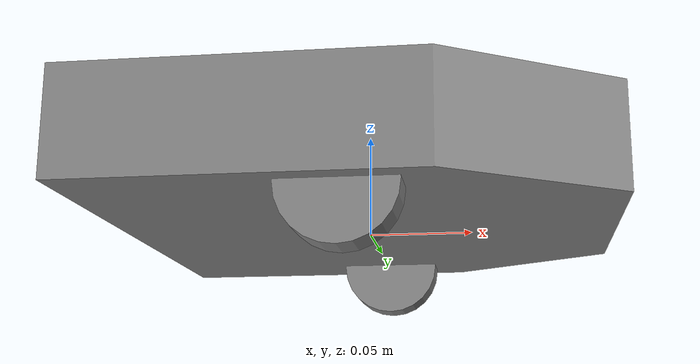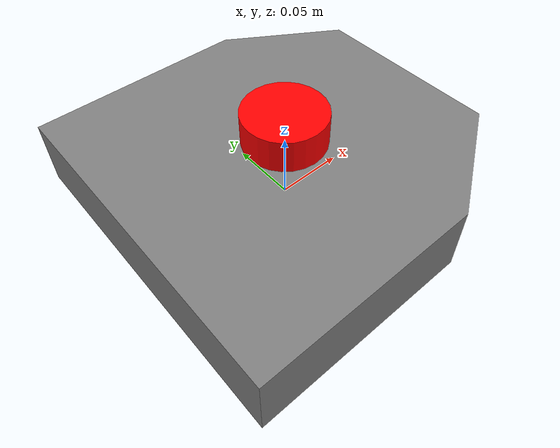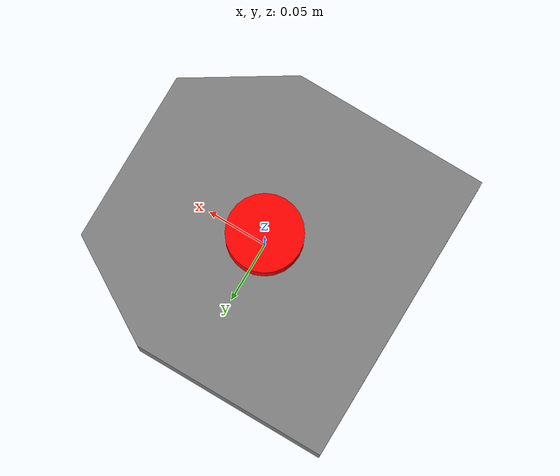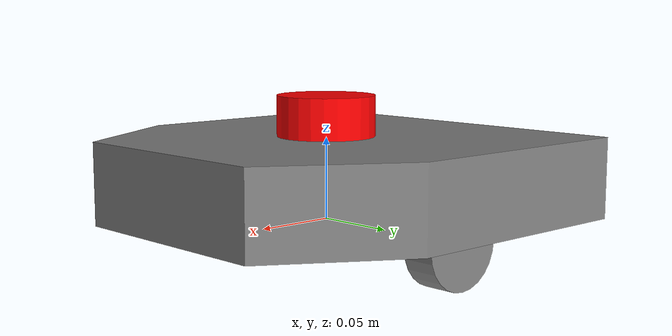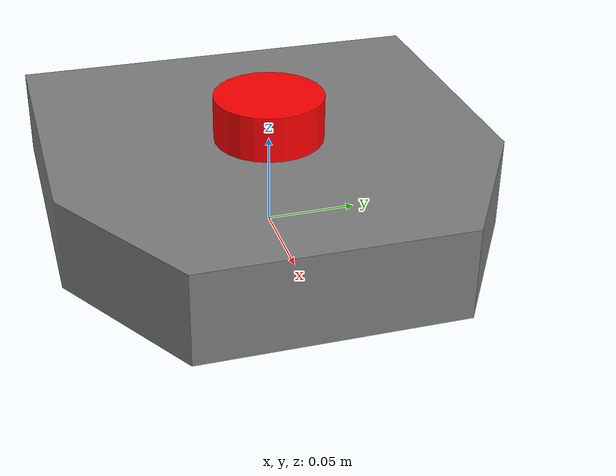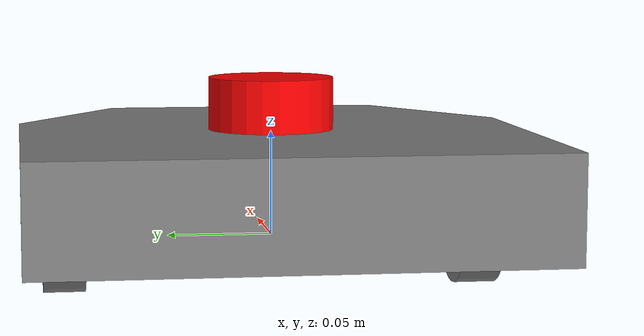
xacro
<?xml version="1.0"?>
<robot name="robot_mino" xmlns:xacro="http://www.ros.org/wiki/xacro">

  <material name="dark_gray"><color rgba="0.5 0.5 0.5 1"/></material>
  <material name="red"><color rgba="1.0 0.0 0.0 1"/></material>

  <!-- ====== UKURAN FISIK — WAJIB DIVALIDASI DENGAN PENGGARIS ASLI ====== -->
  <xacro:property name="wheel_radius" value="0.026"/>       <!-- [CEK] samakan dgn controllers.yaml -->
  <xacro:property name="wheel_separation" value="0.20"/>    <!-- [UKUR ULANG] jarak roda kemungkinan berubah krn plat lebih lebar -->
  <xacro:property name="wheel_width" value="0.02"/>

  <xacro:property name="body_length" value="0.24"/>   <!-- depan-belakang (x) -->
  <xacro:property name="body_width" value="0.24"/>    <!-- kiri-kanan (y) -->
  <xacro:property name="base_height" value="0.05"/>

  <link name="base_footprint"/>

  <link name="base_link">
    <visual>
      <geometry>
        <mesh filename="file:///home/pi/ros2_ws/src/robot_mino_control/mesh/base_hexagon.stl" scale="1 1 1"/>
      </geometry>
      <material name="dark_gray"/>
    </visual>
    <collision>
      <geometry><box size="${body_length} ${body_width} ${base_height}"/></geometry>
    </collision>
    <inertial>
      <mass value="1.8"/> <!-- [UKUR ULANG] massa total kemungkinan berubah krn bentuk plat baru -->
      <inertia ixx="0.015" ixy="0" ixz="0" iyy="0.015" iyz="0" izz="0.02"/>
    </inertial>
  </link>

  <joint name="base_footprint_joint" type="fixed">
    <parent link="base_footprint"/>
    <child link="base_link"/>
    <origin xyz="0 0 ${wheel_radius}" rpy="0 0 0"/>
  </joint>

  <xacro:macro name="wheel" params="prefix y_offset">
    <link name="${prefix}_wheel_link">
      <visual>
        <origin xyz="0 0 0" rpy="${pi/2} 0 0"/>
        <geometry><cylinder radius="${wheel_radius}" length="${wheel_width}"/></geometry>
        <material name="dark_gray"/>
      </visual>
      <collision>
        <origin xyz="0 0 0" rpy="${pi/2} 0 0"/>
        <geometry><cylinder radius="${wheel_radius}" length="${wheel_width}"/></geometry>
      </collision>
      <inertial>
        <mass value="0.05"/>
        <inertia ixx="0.0001" ixy="0" ixz="0" iyy="0.0001" iyz="0" izz="0.0001"/>
      </inertial>
    </link>
    <joint name="${prefix}_wheel_joint" type="continuous">
      <parent link="base_link"/>
      <child link="${prefix}_wheel_link"/>
      <origin xyz="0 ${y_offset} -${wheel_radius}" rpy="0 0 0"/>
      <axis xyz="0 1 0"/>
    </joint>
  </xacro:macro>

  <!-- Roda tetap 2 buah (differential drive) -->
  <xacro:wheel prefix="left"  y_offset="${wheel_separation/2}"/>
  <xacro:wheel prefix="right" y_offset="-${wheel_separation/2}"/>

  <link name="imu_link"/>
  <joint name="imu_joint" type="fixed">
    <parent link="base_link"/>
    <child link="imu_link"/>
    <origin xyz="0 0 0.02" rpy="0 0 0"/>
  </joint>

  <!-- Lidar TEPAT DI TENGAH, warna MERAH -->
  <link name="lidar_link">
    <visual>
      <geometry><cylinder radius="0.03" length="0.025"/></geometry>
      <material name="red"/>
    </visual>
    <collision>
      <geometry><cylinder radius="0.03" length="0.025"/></geometry>
    </collision>
    <inertial>
      <mass value="0.1"/>
      <inertia ixx="0.0001" ixy="0" ixz="0" iyy="0.0001" iyz="0" izz="0.0001"/>
    </inertial>
  </link>

  <joint name="lidar_joint" type="fixed">
    <parent link="base_link"/>
    <child link="lidar_link"/>
    <!-- x=0 y=0 karena lidar di pusat. z & yaw dikurangi 1.5708 (putar 90 derajat kanan) -->
    <origin xyz="0 0 0.0375" rpy="0 0 3.14159"/>
  </joint>

  <ros2_control name="RobotMinoSystem" type="system">
    <hardware>
      <plugin>topic_based_ros2_control/TopicBasedSystem</plugin>
      <param name="joint_commands_topic">/topic_based_joint_commands</param>
      <param name="joint_states_topic">/topic_based_joint_states</param>
      <param name="trigger_joint_command_threshold">-1</param>
    </hardware>
    <joint name="left_wheel_joint">
      <command_interface name="velocity"/>
      <state_interface name="position"/>
      <state_interface name="velocity"/>
    </joint>
    <joint name="right_wheel_joint">
      <command_interface name="velocity"/>
      <state_interface name="position"/>
      <state_interface name="velocity"/>
    </joint>
  </ros2_control>

</robot>
